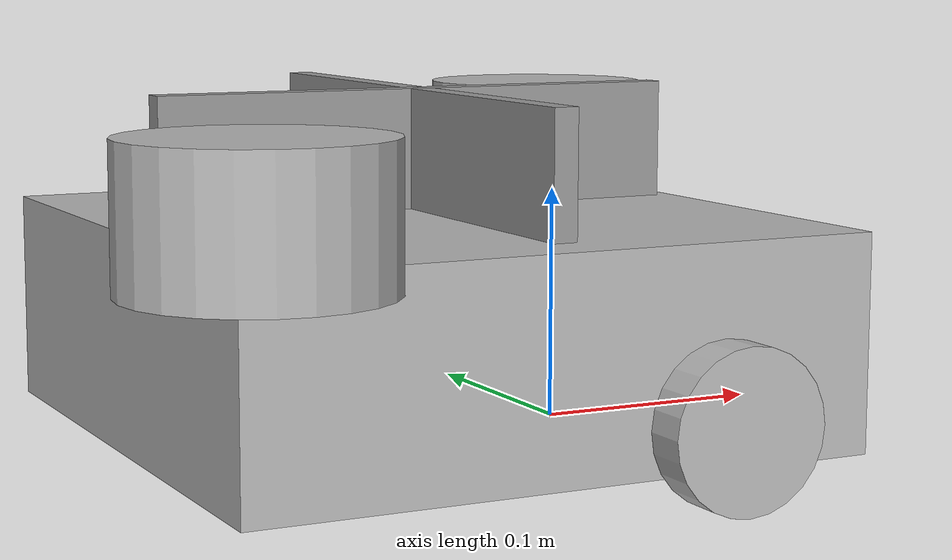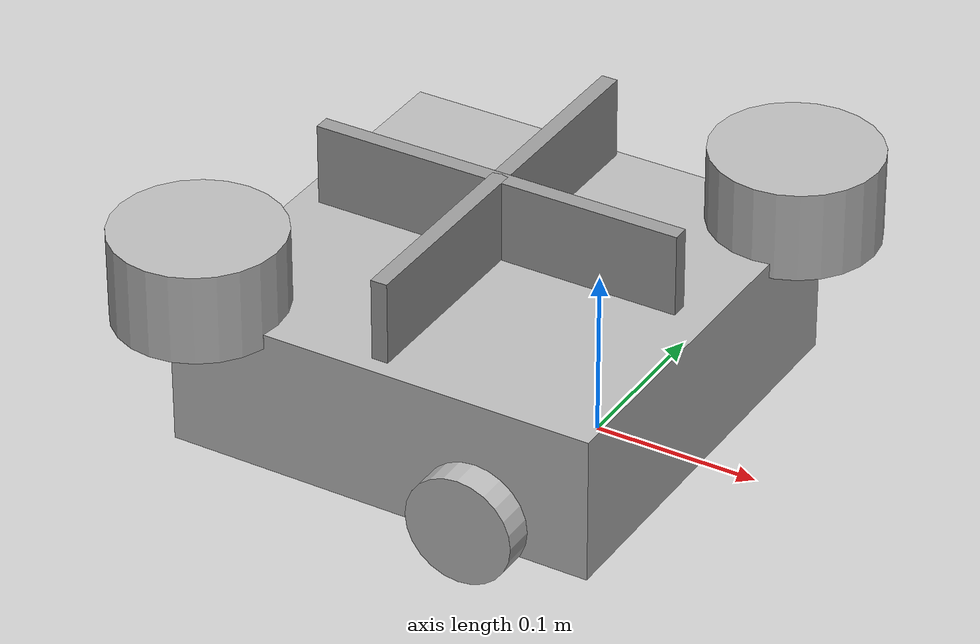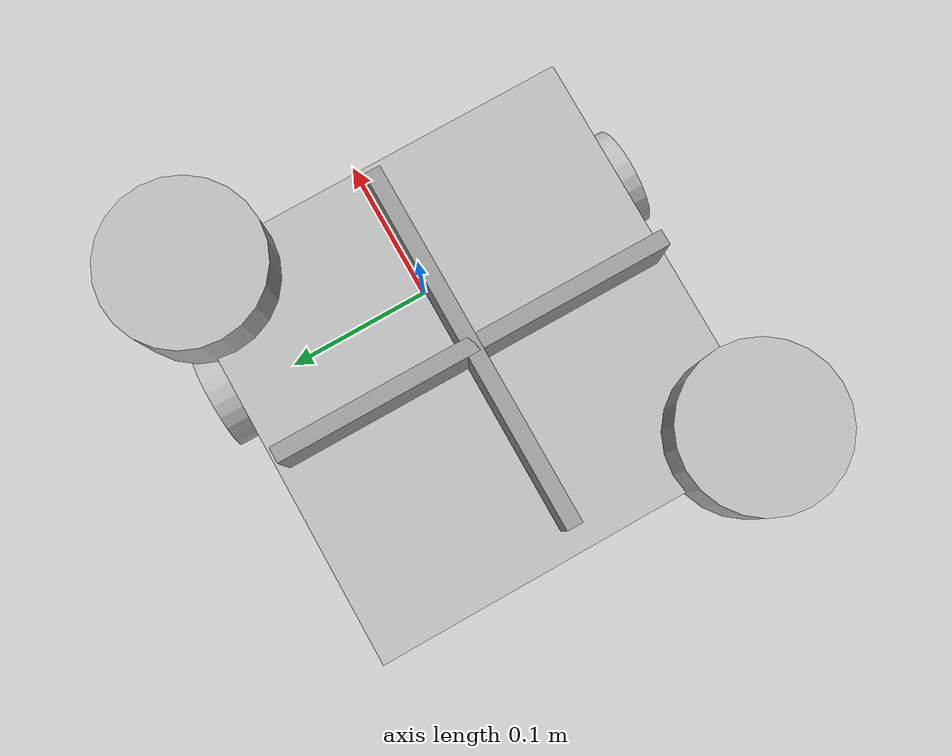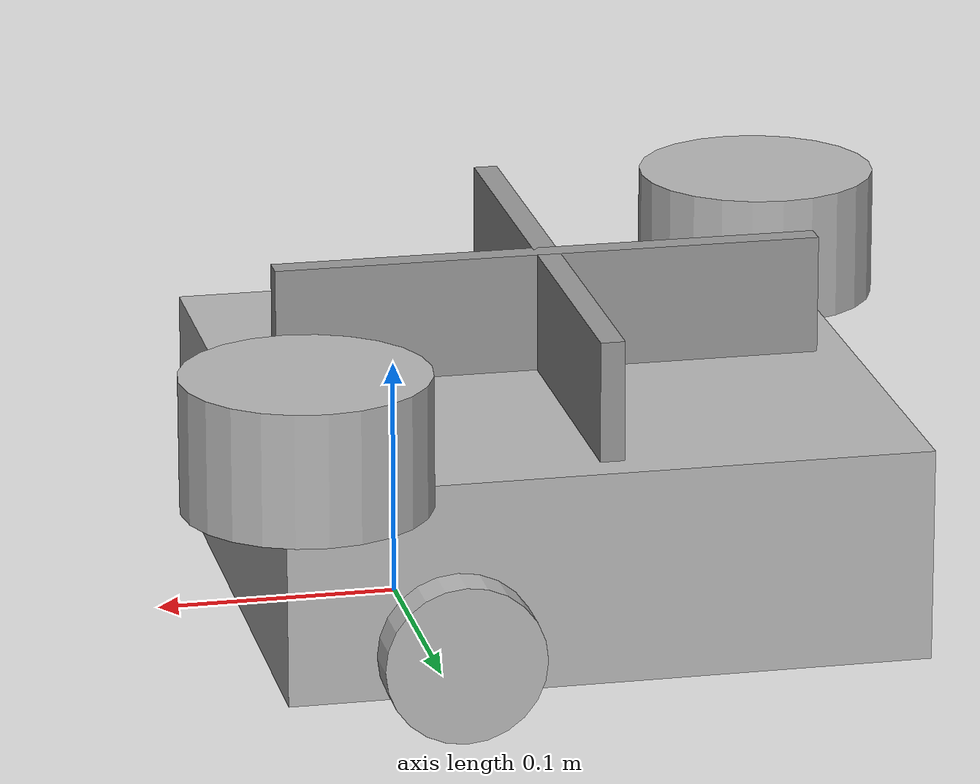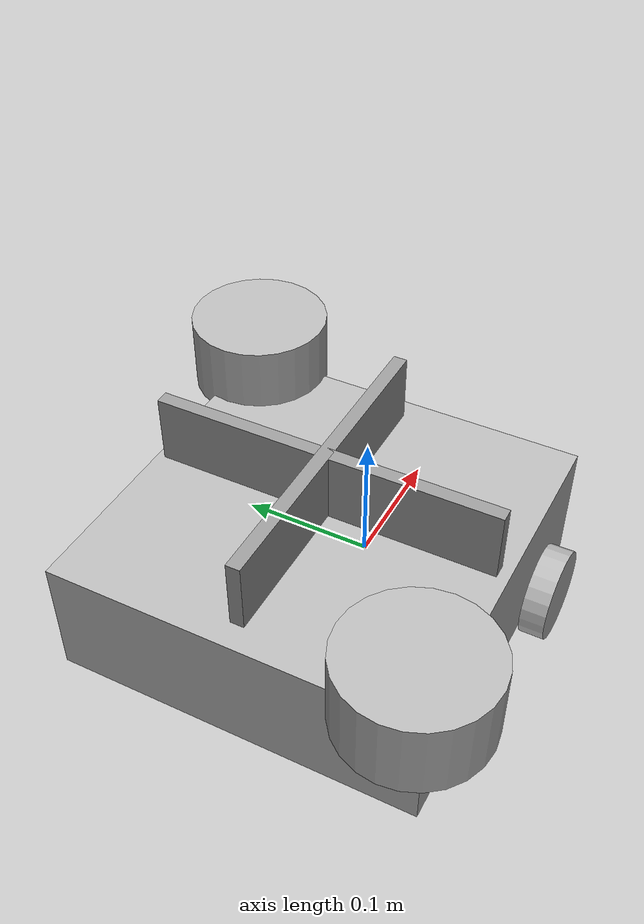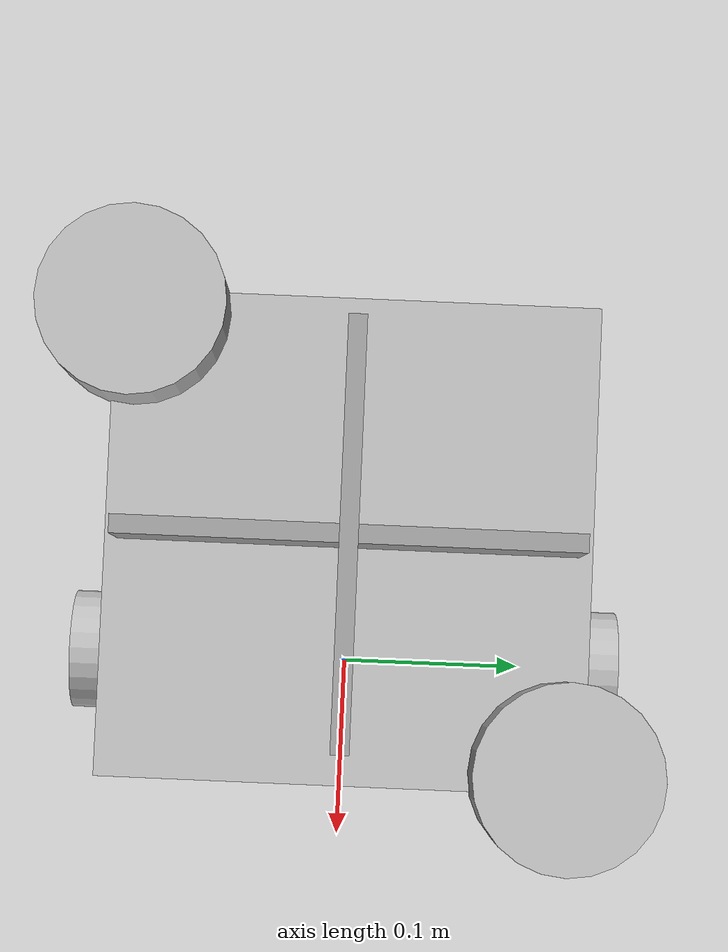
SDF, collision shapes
<?xml version='1.0'?>
<sdf version='1.7'>
  <model name='my_robot'>
    <link name='base_footprint'>
      <self_collide>0</self_collide>
      <inertial>
        <pose>0 0 0 0 -0 0</pose>
        <inertia>
          <ixx>1</ixx>
          <ixy>0</ixy>
          <ixz>0</ixz>
          <iyy>1</iyy>
          <iyz>0</iyz>
          <izz>1</izz>
        </inertia>
        <mass>1</mass>
      </inertial>
      <enable_wind>0</enable_wind>
      <kinematic>0</kinematic>
      <pose>0 0 0 0 -0 0</pose>
    </link>
    <link name='base_link'>
      <inertial>
        <pose>-0.064 0 0.048 0 -0 0</pose>
        <inertia>
          <ixx>0.0421114</ixx>
          <ixy>0</ixy>
          <ixz>0</ixz>
          <iyy>0.0421114</iyy>
          <iyz>0</iyz>
          <izz>0.0752549</izz>
        </inertia>
        <mass>1.37291</mass>
      </inertial>
      <self_collide>0</self_collide>
      <enable_wind>0</enable_wind>
      <kinematic>0</kinematic>
      <pose>0 0 0 0 -0 0</pose>
      <visual name='base_visual'>
        <pose>-0.064 0 0 0 -0 0</pose>
        <geometry>
          <mesh>
            <uri>model://my_robot/meshes/waffle_pi_base.dae</uri>
            <scale>0.001 0.001 0.001</scale>
          </mesh>
        </geometry>
        <material>
          <shader type='pixel'/>
          <emissive>0 0 0 1</emissive>
        </material>
        <transparency>0</transparency>
        <cast_shadows>1</cast_shadows>
      </visual>
      <collision name='base_collision'>
        <laser_retro>0</laser_retro>
        <max_contacts>10</max_contacts>
        <pose>-0.064 0 0.048 0 -0 0</pose>
        <geometry>
          <box>
            <size>0.265 0.265 0.089</size>
          </box>
        </geometry>
        <surface>
          <friction>
            <ode>
              <mu>1</mu>
              <mu2>1</mu2>
              <fdir1>0 0 0</fdir1>
              <slip1>0</slip1>
              <slip2>0</slip2>
            </ode>
            <torsional>
              <coefficient>1</coefficient>
              <patch_radius>0</patch_radius>
              <surface_radius>0</surface_radius>
              <use_patch_radius>1</use_patch_radius>
              <ode>
                <slip>0</slip>
              </ode>
            </torsional>
          </friction>
          <bounce>
            <restitution_coefficient>0</restitution_coefficient>
            <threshold>1e+06</threshold>
          </bounce>
          <contact>
            <collide_without_contact>0</collide_without_contact>
            <collide_without_contact_bitmask>1</collide_without_contact_bitmask>
            <collide_bitmask>1</collide_bitmask>
            <ode>
              <soft_cfm>0</soft_cfm>
              <soft_erp>0.2</soft_erp>
              <kp>1e+13</kp>
              <kd>1</kd>
              <max_vel>0.01</max_vel>
              <min_depth>0</min_depth>
            </ode>
            <bullet>
              <split_impulse>1</split_impulse>
              <split_impulse_penetration_threshold>-0.01</split_impulse_penetration_threshold>
              <soft_cfm>0</soft_cfm>
              <soft_erp>0.2</soft_erp>
              <kp>1e+13</kp>
              <kd>1</kd>
            </bullet>
          </contact>
        </surface>
      </collision>
    </link>
    <link name='base_scan_1'>
      <inertial>
        <pose>0.058 0.12 0.111 0 -0 0</pose>
        <inertia>
          <ixx>0.001</ixx>
          <ixy>0</ixy>
          <ixz>0</ixz>
          <iyy>0.001</iyy>
          <iyz>0</iyz>
          <izz>0.001</izz>
        </inertia>
        <mass>0.114</mass>
      </inertial>
      <sensor name='hls_lfcd_lds' type='ray'>
        <always_on>1</always_on>
        <visualize>1</visualize>
        <pose>0.046 0.12 0.121 0 -0 0</pose>
        <update_rate>5</update_rate>
        <ray>
          <scan>
            <horizontal>
              <samples>360</samples>
              <resolution>1</resolution>
              <min_angle>0</min_angle>
              <max_angle>6.28</max_angle>
            </horizontal>
            <vertical>
              <samples>1</samples>
              <min_angle>0</min_angle>
              <max_angle>0</max_angle>
            </vertical>
          </scan>
          <range>
            <min>0.10</min>
            <max>3.5</max>
            <resolution>0.015</resolution>
          </range>
          <noise>
            <type>gaussian</type>
            <mean>0</mean>
            <stddev>0.01</stddev>
          </noise>
        </ray>
        <plugin name='turtlebot3_laserscan' filename='libgazebo_ros_ray_sensor.so'>
          <ros>
            <remapping>~/out:=scan_1</remapping>
          </ros>
          <output_type>sensor_msgs/LaserScan</output_type>
          <frame_name>base_scan_1</frame_name>
        </plugin>
      </sensor>
      <self_collide>0</self_collide>
      <enable_wind>0</enable_wind>
      <kinematic>0</kinematic>
      <pose>0 0 0 0 -0 0</pose>
      <visual name='lidar_sensor_visual'>
        <pose>0.046 0.12 0.121 0 -0 0</pose>
        <geometry>
          <mesh>
            <uri>model://my_robot/meshes/lds.dae</uri>
            <scale>0.001 0.001 0.001</scale>
          </mesh>
        </geometry>
        <material>
          <shader type='pixel'/>
        </material>
        <transparency>0</transparency>
        <cast_shadows>1</cast_shadows>
      </visual>
      <collision name='lidar_sensor_collision'>
        <laser_retro>0</laser_retro>
        <max_contacts>10</max_contacts>
        <pose>0.058 0.12 0.111 0 -0 0</pose>
        <geometry>
          <cylinder>
            <radius>0.0508</radius>
            <length>0.055</length>
          </cylinder>
        </geometry>
        <surface>
          <friction>
            <ode>
              <mu>1</mu>
              <mu2>1</mu2>
              <fdir1>0 0 0</fdir1>
              <slip1>0</slip1>
              <slip2>0</slip2>
            </ode>
            <torsional>
              <coefficient>1</coefficient>
              <patch_radius>0</patch_radius>
              <surface_radius>0</surface_radius>
              <use_patch_radius>1</use_patch_radius>
              <ode>
                <slip>0</slip>
              </ode>
            </torsional>
          </friction>
          <bounce>
            <restitution_coefficient>0</restitution_coefficient>
            <threshold>1e+06</threshold>
          </bounce>
          <contact>
            <collide_without_contact>0</collide_without_contact>
            <collide_without_contact_bitmask>1</collide_without_contact_bitmask>
            <collide_bitmask>1</collide_bitmask>
            <ode>
              <soft_cfm>0</soft_cfm>
              <soft_erp>0.2</soft_erp>
              <kp>1e+13</kp>
              <kd>1</kd>
              <max_vel>0.01</max_vel>
              <min_depth>0</min_depth>
            </ode>
            <bullet>
              <split_impulse>1</split_impulse>
              <split_impulse_penetration_threshold>-0.01</split_impulse_penetration_threshold>
              <soft_cfm>0</soft_cfm>
              <soft_erp>0.2</soft_erp>
              <kp>1e+13</kp>
              <kd>1</kd>
            </bullet>
          </contact>
        </surface>
      </collision>
    </link>
    <link name='base_scan_2'>
      <inertial>
        <pose>-0.184 -0.12 0.111 0 -0 0</pose>
        <inertia>
          <ixx>0.001</ixx>
          <ixy>0</ixy>
          <ixz>0</ixz>
          <iyy>0.001</iyy>
          <iyz>0</iyz>
          <izz>0.001</izz>
        </inertia>
        <mass>0.114</mass>
      </inertial>
      <sensor name='hls_lfcd_lds' type='ray'>
        <always_on>1</always_on>
        <visualize>1</visualize>
        <pose>-0.196 -0.12 0.121 0 -0 0</pose>
        <update_rate>5</update_rate>
        <ray>
          <scan>
            <horizontal>
              <samples>360</samples>
              <resolution>1</resolution>
              <min_angle>0</min_angle>
              <max_angle>6.28</max_angle>
            </horizontal>
            <vertical>
              <samples>1</samples>
              <min_angle>0</min_angle>
              <max_angle>0</max_angle>
            </vertical>
          </scan>
          <range>
            <min>0.10</min>
            <max>3.5</max>
            <resolution>0.015</resolution>
          </range>
          <noise>
            <type>gaussian</type>
            <mean>0</mean>
            <stddev>0.01</stddev>
          </noise>
        </ray>
        <plugin name='turtlebot3_laserscan' filename='libgazebo_ros_ray_sensor.so'>
          <ros>
            <remapping>~/out:=scan_2</remapping>
          </ros>
          <output_type>sensor_msgs/LaserScan</output_type>
          <frame_name>base_scan_2</frame_name>
        </plugin>
      </sensor>
      <self_collide>0</self_collide>
      <enable_wind>0</enable_wind>
      <kinematic>0</kinematic>
      <pose>0 0 0 0 -0 0</pose>
      <visual name='lidar_sensor_visual'>
        <pose>-0.196 -0.12 0.121 0 -0 0</pose>
        <geometry>
          <mesh>
            <uri>model://my_robot/meshes/lds.dae</uri>
            <scale>0.001 0.001 0.001</scale>
          </mesh>
        </geometry>
        <material>
          <shader type='pixel'/>
        </material>
        <transparency>0</transparency>
        <cast_shadows>1</cast_shadows>
      </visual>
      <collision name='lidar_sensor_collision'>
        <laser_retro>0</laser_retro>
        <max_contacts>10</max_contacts>
        <pose>-0.184 -0.12 0.111 0 -0 0</pose>
        <geometry>
          <cylinder>
            <radius>0.0508</radius>
            <length>0.055</length>
          </cylinder>
        </geometry>
        <surface>
          <friction>
            <ode>
              <mu>1</mu>
              <mu2>1</mu2>
              <fdir1>0 0 0</fdir1>
              <slip1>0</slip1>
              <slip2>0</slip2>
            </ode>
            <torsional>
              <coefficient>1</coefficient>
              <patch_radius>0</patch_radius>
              <surface_radius>0</surface_radius>
              <use_patch_radius>1</use_patch_radius>
              <ode>
                <slip>0</slip>
              </ode>
            </torsional>
          </friction>
          <bounce>
            <restitution_coefficient>0</restitution_coefficient>
            <threshold>1e+06</threshold>
          </bounce>
          <contact>
            <collide_without_contact>0</collide_without_contact>
            <collide_without_contact_bitmask>1</collide_without_contact_bitmask>
            <collide_bitmask>1</collide_bitmask>
            <ode>
              <soft_cfm>0</soft_cfm>
              <soft_erp>0.2</soft_erp>
              <kp>1e+13</kp>
              <kd>1</kd>
              <max_vel>0.01</max_vel>
              <min_depth>0</min_depth>
            </ode>
            <bullet>
              <split_impulse>1</split_impulse>
              <split_impulse_penetration_threshold>-0.01</split_impulse_penetration_threshold>
              <soft_cfm>0</soft_cfm>
              <soft_erp>0.2</soft_erp>
              <kp>1e+13</kp>
              <kd>1</kd>
            </bullet>
          </contact>
        </surface>
      </collision>
    </link>
    <link name='camera_link'>
      <self_collide>0</self_collide>
      <inertial>
        <pose>0 0 0 0 -0 0</pose>
        <inertia>
          <ixx>1</ixx>
          <ixy>0</ixy>
          <ixz>0</ixz>
          <iyy>1</iyy>
          <iyz>0</iyz>
          <izz>1</izz>
        </inertia>
        <mass>1</mass>
      </inertial>
      <enable_wind>0</enable_wind>
      <kinematic>0</kinematic>
      <pose>0 0 0 0 -0 0</pose>
    </link>
    <link name='camera_rgb_optical_frame'>
      <inertial>
        <pose>0.076 0 0.093 0 -0 0</pose>
        <inertia>
          <ixx>0.001</ixx>
          <ixy>0</ixy>
          <ixz>0</ixz>
          <iyy>0.001</iyy>
          <iyz>0</iyz>
          <izz>0.001</izz>
        </inertia>
        <mass>0.035</mass>
      </inertial>
      <pose>0.076 0 0.093 0 -0 0</pose>
      <sensor name='camera' type='camera'>
        <always_on>1</always_on>
        <visualize>1</visualize>
        <update_rate>30</update_rate>
        <camera name='picam'>
          <horizontal_fov>1.0856</horizontal_fov>
          <image>
            <width>640</width>
            <height>480</height>
            <format>R8G8B8</format>
          </image>
          <clip>
            <near>0.03</near>
            <far>100</far>
          </clip>
          <noise>
            <type>gaussian</type>
            <mean>0</mean>
            <stddev>0.007</stddev>
          </noise>
        </camera>
        <plugin name='camera_driver' filename='libgazebo_ros_camera.so'>
          <ros/>
        </plugin>
      </sensor>
      <self_collide>0</self_collide>
      <enable_wind>0</enable_wind>
      <kinematic>0</kinematic>
    </link>
    <link name='caster_back_left_link'>
      <pose>-0.177 0.064 -0.004 -1.57 -0 -0</pose>
      <inertial>
        <mass>0.001</mass>
        <inertia>
          <ixx>1e-05</ixx>
          <ixy>0</ixy>
          <ixz>0</ixz>
          <iyy>1e-05</iyy>
          <iyz>0</iyz>
          <izz>1e-05</izz>
        </inertia>
        <pose>0 0 0 0 -0 0</pose>
      </inertial>
      <self_collide>0</self_collide>
      <enable_wind>0</enable_wind>
      <kinematic>0</kinematic>
      <collision name='collision'>
        <laser_retro>0</laser_retro>
        <max_contacts>10</max_contacts>
        <pose>0 0 0 0 -0 0</pose>
        <geometry>
          <sphere>
            <radius>0.005</radius>
          </sphere>
        </geometry>
        <surface>
          <friction>
            <ode>
              <mu>1</mu>
              <mu2>1</mu2>
              <fdir1>0 0 0</fdir1>
              <slip1>0</slip1>
              <slip2>0</slip2>
            </ode>
            <torsional>
              <coefficient>1</coefficient>
              <patch_radius>0</patch_radius>
              <surface_radius>0</surface_radius>
              <use_patch_radius>1</use_patch_radius>
              <ode>
                <slip>0</slip>
              </ode>
            </torsional>
          </friction>
          <bounce>
            <restitution_coefficient>0</restitution_coefficient>
            <threshold>1e+06</threshold>
          </bounce>
          <contact>
            <collide_without_contact>0</collide_without_contact>
            <collide_without_contact_bitmask>1</collide_without_contact_bitmask>
            <collide_bitmask>1</collide_bitmask>
            <ode>
              <soft_cfm>0</soft_cfm>
              <soft_erp>0.2</soft_erp>
              <kp>100000</kp>
              <kd>1</kd>
              <max_vel>0.01</max_vel>
              <min_depth>0.001</min_depth>
            </ode>
            <bullet>
              <split_impulse>1</split_impulse>
              <split_impulse_penetration_threshold>-0.01</split_impulse_penetration_threshold>
              <soft_cfm>0</soft_cfm>
              <soft_erp>0.2</soft_erp>
              <kp>100000</kp>
              <kd>1</kd>
            </bullet>
          </contact>
        </surface>
      </collision>
    </link>
    <link name='caster_back_right_link'>
      <pose>-0.177 -0.064 -0.004 -1.57 -0 -0</pose>
      <inertial>
        <mass>0.001</mass>
        <inertia>
          <ixx>1e-05</ixx>
          <ixy>0</ixy>
          <ixz>0</ixz>
          <iyy>1e-05</iyy>
          <iyz>0</iyz>
          <izz>1e-05</izz>
        </inertia>
        <pose>0 0 0 0 -0 0</pose>
      </inertial>
      <self_collide>0</self_collide>
      <enable_wind>0</enable_wind>
      <kinematic>0</kinematic>
      <collision name='collision'>
        <laser_retro>0</laser_retro>
        <max_contacts>10</max_contacts>
        <pose>0 0 0 0 -0 0</pose>
        <geometry>
          <sphere>
            <radius>0.005</radius>
          </sphere>
        </geometry>
        <surface>
          <friction>
            <ode>
              <mu>1</mu>
              <mu2>1</mu2>
              <fdir1>0 0 0</fdir1>
              <slip1>0</slip1>
              <slip2>0</slip2>
            </ode>
            <torsional>
              <coefficient>1</coefficient>
              <patch_radius>0</patch_radius>
              <surface_radius>0</surface_radius>
              <use_patch_radius>1</use_patch_radius>
              <ode>
                <slip>0</slip>
              </ode>
            </torsional>
          </friction>
          <bounce>
            <restitution_coefficient>0</restitution_coefficient>
            <threshold>1e+06</threshold>
          </bounce>
          <contact>
            <collide_without_contact>0</collide_without_contact>
            <collide_without_contact_bitmask>1</collide_without_contact_bitmask>
            <collide_bitmask>1</collide_bitmask>
            <ode>
              <soft_cfm>0</soft_cfm>
              <soft_erp>0.2</soft_erp>
              <kp>100000</kp>
              <kd>1</kd>
              <max_vel>0.01</max_vel>
              <min_depth>0.001</min_depth>
            </ode>
            <bullet>
              <split_impulse>1</split_impulse>
              <split_impulse_penetration_threshold>-0.01</split_impulse_penetration_threshold>
              <soft_cfm>0</soft_cfm>
              <soft_erp>0.2</soft_erp>
              <kp>100000</kp>
              <kd>1</kd>
            </bullet>
          </contact>
        </surface>
      </collision>
    </link>
    <link name='imu_link'>
      <sensor name='tb3_imu' type='imu'>
        <always_on>1</always_on>
        <update_rate>200</update_rate>
        <imu>
          <angular_velocity>
            <x>
              <noise type='gaussian'>
                <mean>0</mean>
                <stddev>0.0002</stddev>
              </noise>
            </x>
            <y>
              <noise type='gaussian'>
                <mean>0</mean>
                <stddev>0.0002</stddev>
              </noise>
            </y>
            <z>
              <noise type='gaussian'>
                <mean>0</mean>
                <stddev>0.0002</stddev>
              </noise>
            </z>
          </angular_velocity>
          <linear_acceleration>
            <x>
              <noise type='gaussian'>
                <mean>0</mean>
                <stddev>0.017</stddev>
              </noise>
            </x>
            <y>
              <noise type='gaussian'>
                <mean>0</mean>
                <stddev>0.017</stddev>
              </noise>
            </y>
            <z>
              <noise type='gaussian'>
                <mean>0</mean>
                <stddev>0.017</stddev>
              </noise>
            </z>
          </linear_acceleration>
          <angular_velocity/>
          <linear_acceleration/>
        </imu>
        <plugin name='turtlebot3_imu' filename='libgazebo_ros_imu_sensor.so'>
          <ros>
            <remapping>~/out:=imu</remapping>
          </ros>
        </plugin>
      </sensor>
      <self_collide>0</self_collide>
      <inertial>
        <pose>0 0 0 0 -0 0</pose>
        <inertia>
          <ixx>1</ixx>
          <ixy>0</ixy>
          <ixz>0</ixz>
          <iyy>1</iyy>
          <iyz>0</iyz>
          <izz>1</izz>
        </inertia>
        <mass>1</mass>
      </inertial>
      <enable_wind>0</enable_wind>
      <kinematic>0</kinematic>
      <pose>0 0 0 0 -0 0</pose>
    </link>
    <link name='link_1'>
      <inertial>
        <mass>1</mass>
        <inertia>
          <ixx>0.166667</ixx>
          <ixy>0</ixy>
          <ixz>0</ixz>
          <iyy>0.166667</iyy>
          <iyz>0</iyz>
          <izz>0.166667</izz>
        </inertia>
        <pose>0 0 0 0 -0 0</pose>
      </inertial>
      <pose>-0.065 -0 0.12 0 -0 1.5708</pose>
      <gravity>1</gravity>
      <self_collide>0</self_collide>
      <kinematic>0</kinematic>
      <enable_wind>0</enable_wind>
      <visual name='visual'>
        <pose>0 0 0 0 -0 0</pose>
        <geometry>
          <box>
            <size>0.25 0.01 0.05</size>
          </box>
        </geometry>
        <material>
          <lighting>1</lighting>
          <script>
            <uri>file://media/materials/scripts/gazebo.material</uri>
            <name>Gazebo/Grey</name>
          </script>
          <shader type='pixel'>
            <normal_map>__default__</normal_map>
          </shader>
          <ambient>0.3 0.3 0.3 1</ambient>
          <diffuse>0.7 0.7 0.7 1</diffuse>
          <specular>0.01 0.01 0.01 1</specular>
          <emissive>0 0 0 1</emissive>
        </material>
        <transparency>0</transparency>
        <cast_shadows>1</cast_shadows>
      </visual>
      <collision name='collision'>
        <laser_retro>0</laser_retro>
        <max_contacts>10</max_contacts>
        <pose>0 0 0 0 -0 0</pose>
        <geometry>
          <box>
            <size>0.25 0.01 0.05</size>
          </box>
        </geometry>
        <surface>
          <friction>
            <ode>
              <mu>1</mu>
              <mu2>1</mu2>
              <fdir1>0 0 0</fdir1>
              <slip1>0</slip1>
              <slip2>0</slip2>
            </ode>
            <torsional>
              <coefficient>1</coefficient>
              <patch_radius>0</patch_radius>
              <surface_radius>0</surface_radius>
              <use_patch_radius>1</use_patch_radius>
              <ode>
                <slip>0</slip>
              </ode>
            </torsional>
          </friction>
          <bounce>
            <restitution_coefficient>0</restitution_coefficient>
            <threshold>1e+06</threshold>
          </bounce>
          <contact>
            <collide_without_contact>0</collide_without_contact>
            <collide_without_contact_bitmask>1</collide_without_contact_bitmask>
            <collide_bitmask>1</collide_bitmask>
            <ode>
              <soft_cfm>0</soft_cfm>
              <soft_erp>0.2</soft_erp>
              <kp>1e+13</kp>
              <kd>1</kd>
              <max_vel>0.01</max_vel>
              <min_depth>0</min_depth>
            </ode>
            <bullet>
              <split_impulse>1</split_impulse>
              <split_impulse_penetration_threshold>-0.01</split_impulse_penetration_threshold>
              <soft_cfm>0</soft_cfm>
              <soft_erp>0.2</soft_erp>
              <kp>1e+13</kp>
              <kd>1</kd>
            </bullet>
          </contact>
        </surface>
      </collision>
    </link>
    <link name='link_2'>
      <inertial>
        <mass>1</mass>
        <inertia>
          <ixx>0.166667</ixx>
          <ixy>0</ixy>
          <ixz>0</ixz>
          <iyy>0.166667</iyy>
          <iyz>0</iyz>
          <izz>0.166667</izz>
        </inertia>
        <pose>0 0 0 0 -0 0</pose>
      </inertial>
      <pose>-0.065 -0 0.12 0 -0 0</pose>
      <gravity>1</gravity>
      <self_collide>0</self_collide>
      <kinematic>0</kinematic>
      <enable_wind>0</enable_wind>
      <visual name='visual'>
        <pose>0 0 0 0 -0 0</pose>
        <geometry>
          <box>
            <size>0.23 0.01 0.05</size>
          </box>
        </geometry>
        <material>
          <lighting>1</lighting>
          <script>
            <uri>file://media/materials/scripts/gazebo.material</uri>
            <name>Gazebo/Grey</name>
          </script>
          <shader type='pixel'>
            <normal_map>__default__</normal_map>
          </shader>
          <ambient>0.3 0.3 0.3 1</ambient>
          <diffuse>0.7 0.7 0.7 1</diffuse>
          <specular>0.01 0.01 0.01 1</specular>
          <emissive>0 0 0 1</emissive>
        </material>
        <transparency>0</transparency>
        <cast_shadows>1</cast_shadows>
      </visual>
      <collision name='collision'>
        <laser_retro>0</laser_retro>
        <max_contacts>10</max_contacts>
        <pose>0 0 0 0 -0 0</pose>
        <geometry>
          <box>
            <size>0.23 0.01 0.05</size>
          </box>
        </geometry>
        <surface>
          <friction>
            <ode>
              <mu>1</mu>
              <mu2>1</mu2>
              <fdir1>0 0 0</fdir1>
              <slip1>0</slip1>
              <slip2>0</slip2>
            </ode>
            <torsional>
              <coefficient>1</coefficient>
              <patch_radius>0</patch_radius>
              <surface_radius>0</surface_radius>
              <use_patch_radius>1</use_patch_radius>
              <ode>
                <slip>0</slip>
              </ode>
            </torsional>
          </friction>
          <bounce>
            <restitution_coefficient>0</restitution_coefficient>
            <threshold>1e+06</threshold>
          </bounce>
          <contact>
            <collide_without_contact>0</collide_without_contact>
            <collide_without_contact_bitmask>1</collide_without_contact_bitmask>
            <collide_bitmask>1</collide_bitmask>
            <ode>
              <soft_cfm>0</soft_cfm>
              <soft_erp>0.2</soft_erp>
              <kp>1e+13</kp>
              <kd>1</kd>
              <max_vel>0.01</max_vel>
              <min_depth>0</min_depth>
            </ode>
            <bullet>
              <split_impulse>1</split_impulse>
              <split_impulse_penetration_threshold>-0.01</split_impulse_penetration_threshold>
              <soft_cfm>0</soft_cfm>
              <soft_erp>0.2</soft_erp>
              <kp>1e+13</kp>
              <kd>1</kd>
            </bullet>
          </contact>
        </surface>
      </collision>
    </link>
    <link name='wheel_left_link'>
      <inertial>
        <pose>0 0.144 0.023 -1.57 0 0</pose>
        <inertia>
          <ixx>0.00181582</ixx>
          <ixy>-9.3392e-12</ixy>
          <ixz>1.04909e-11</ixz>
          <iyy>0.00329221</iyy>
          <iyz>5.75694e-11</iyz>
          <izz>0.00181582</izz>
        </inertia>
        <mass>0.0284989</mass>
      </inertial>
      <self_collide>0</self_collide>
      <enable_wind>0</enable_wind>
      <kinematic>0</kinematic>
      <pose>0 0 0 0 -0 0</pose>
      <visual name='wheel_left_visual'>
        <pose>0 0.144 0.023 0 -0 0</pose>
        <geometry>
          <mesh>
            <uri>model://my_robot/meshes/tire.dae</uri>
            <scale>0.001 0.001 0.001</scale>
          </mesh>
        </geometry>
        <material>
          <shader type='pixel'/>
        </material>
        <transparency>0</transparency>
        <cast_shadows>1</cast_shadows>
      </visual>
      <collision name='wheel_left_collision'>
        <laser_retro>0</laser_retro>
        <max_contacts>10</max_contacts>
        <pose>0 0.144 0.023 -1.57 0 0</pose>
        <geometry>
          <cylinder>
            <radius>0.033</radius>
            <length>0.018</length>
          </cylinder>
        </geometry>
        <surface>
          <friction>
            <ode>
              <mu>100000</mu>
              <mu2>100000</mu2>
              <fdir1>0 0 0</fdir1>
              <slip1>0</slip1>
              <slip2>0</slip2>
            </ode>
            <torsional>
              <coefficient>1</coefficient>
              <patch_radius>0</patch_radius>
              <surface_radius>0</surface_radius>
              <use_patch_radius>1</use_patch_radius>
              <ode>
                <slip>0</slip>
              </ode>
            </torsional>
          </friction>
          <bounce>
            <restitution_coefficient>0</restitution_coefficient>
            <threshold>1e+06</threshold>
          </bounce>
          <contact>
            <collide_without_contact>0</collide_without_contact>
            <collide_without_contact_bitmask>1</collide_without_contact_bitmask>
            <collide_bitmask>1</collide_bitmask>
            <ode>
              <soft_cfm>0</soft_cfm>
              <soft_erp>0.2</soft_erp>
              <kp>100000</kp>
              <kd>1</kd>
              <max_vel>0.01</max_vel>
              <min_depth>0.001</min_depth>
            </ode>
            <bullet>
              <split_impulse>1</split_impulse>
              <split_impulse_penetration_threshold>-0.01</split_impulse_penetration_threshold>
              <soft_cfm>0</soft_cfm>
              <soft_erp>0.2</soft_erp>
              <kp>100000</kp>
              <kd>1</kd>
            </bullet>
          </contact>
        </surface>
      </collision>
    </link>
    <link name='wheel_right_link'>
      <inertial>
        <pose>0 -0.144 0.023 -1.57 0 0</pose>
        <inertia>
          <ixx>0.00181582</ixx>
          <ixy>-9.3392e-12</ixy>
          <ixz>1.04909e-11</ixz>
          <iyy>0.00329221</iyy>
          <iyz>5.75694e-11</iyz>
          <izz>0.00181582</izz>
        </inertia>
        <mass>0.0284989</mass>
      </inertial>
      <self_collide>0</self_collide>
      <enable_wind>0</enable_wind>
      <kinematic>0</kinematic>
      <pose>0 0 0 0 -0 0</pose>
      <visual name='wheel_right_visual'>
        <pose>0 -0.144 0.023 0 -0 0</pose>
        <geometry>
          <mesh>
            <uri>model://my_robot/meshes/tire.dae</uri>
            <scale>0.001 0.001 0.001</scale>
          </mesh>
        </geometry>
        <material>
          <shader type='pixel'/>
        </material>
        <transparency>0</transparency>
        <cast_shadows>1</cast_shadows>
      </visual>
      <collision name='wheel_right_collision'>
        <laser_retro>0</laser_retro>
        <max_contacts>10</max_contacts>
        <pose>0 -0.144 0.023 -1.57 0 0</pose>
        <geometry>
          <cylinder>
            <radius>0.033</radius>
            <length>0.018</length>
          </cylinder>
        </geometry>
        <surface>
          <friction>
            <ode>
              <mu>100000</mu>
              <mu2>100000</mu2>
              <fdir1>0 0 0</fdir1>
              <slip1>0</slip1>
              <slip2>0</slip2>
            </ode>
            <torsional>
              <coefficient>1</coefficient>
              <patch_radius>0</patch_radius>
              <surface_radius>0</surface_radius>
              <use_patch_radius>1</use_patch_radius>
              <ode>
                <slip>0</slip>
              </ode>
            </torsional>
          </friction>
          <bounce>
            <restitution_coefficient>0</restitution_coefficient>
            <threshold>1e+06</threshold>
          </bounce>
          <contact>
            <collide_without_contact>0</collide_without_contact>
            <collide_without_contact_bitmask>1</collide_without_contact_bitmask>
            <collide_bitmask>1</collide_bitmask>
            <ode>
              <soft_cfm>0</soft_cfm>
              <soft_erp>0.2</soft_erp>
              <kp>100000</kp>
              <kd>1</kd>
              <max_vel>0.01</max_vel>
              <min_depth>0.001</min_depth>
            </ode>
            <bullet>
              <split_impulse>1</split_impulse>
              <split_impulse_penetration_threshold>-0.01</split_impulse_penetration_threshold>
              <soft_cfm>0</soft_cfm>
              <soft_erp>0.2</soft_erp>
              <kp>100000</kp>
              <kd>1</kd>
            </bullet>
          </contact>
        </surface>
      </collision>
    </link>
    <joint name='base_joint' type='fixed'>
      <parent>base_footprint</parent>
      <child>base_link</child>
      <pose>0 0 0.01 0 -0 0</pose>
      <physics>
        <ode>
          <limit>
            <cfm>0</cfm>
            <erp>0.2</erp>
          </limit>
          <suspension>
            <cfm>0</cfm>
            <erp>0.2</erp>
          </suspension>
        </ode>
      </physics>
    </joint>
    <joint name='link_1_joint' type='fixed'>
      <parent>base_link</parent>
      <child>link_1</child>
      <pose>0 0 0 0 -0 0</pose>
      <physics>
        <ode>
          <limit>
            <cfm>0</cfm>
            <erp>0.2</erp>
          </limit>
          <suspension>
            <cfm>0</cfm>
            <erp>0.2</erp>
          </suspension>
        </ode>
      </physics>
    </joint>
    <joint name='link_2_joint' type='fixed'>
      <parent>base_link</parent>
      <child>link_2</child>
      <pose>0 0 0 0 -0 0</pose>
      <physics>
        <ode>
          <limit>
            <cfm>0</cfm>
            <erp>0.2</erp>
          </limit>
          <suspension>
            <cfm>0</cfm>
            <erp>0.2</erp>
          </suspension>
        </ode>
      </physics>
    </joint>
    <joint name='camera_joint' type='fixed'>
      <parent>base_link</parent>
      <child>camera_link</child>
      <pose>0.073 -0.011 0.084 0 -0 0</pose>
      <physics>
        <ode>
          <limit>
            <cfm>0</cfm>
            <erp>0.2</erp>
          </limit>
          <suspension>
            <cfm>0</cfm>
            <erp>0.2</erp>
          </suspension>
        </ode>
      </physics>
    </joint>
    <joint name='camera_rgb_joint' type='fixed'>
      <parent>camera_link</parent>
      <child>camera_rgb_optical_frame</child>
      <pose>0.003 0.011 0.009 0 -0 0</pose>
      <physics>
        <ode>
          <limit>
            <cfm>0</cfm>
            <erp>0.2</erp>
          </limit>
          <suspension>
            <cfm>0</cfm>
            <erp>0.2</erp>
          </suspension>
        </ode>
      </physics>
    </joint>
    <joint name='caster_back_left_joint' type='ball'>
      <parent>base_link</parent>
      <child>caster_back_left_link</child>
      <pose>0 0 0 0 -0 0</pose>
      <physics>
        <ode>
          <limit>
            <cfm>0</cfm>
            <erp>0.2</erp>
          </limit>
          <suspension>
            <cfm>0</cfm>
            <erp>0.2</erp>
          </suspension>
        </ode>
      </physics>
    </joint>
    <joint name='caster_back_right_joint' type='ball'>
      <parent>base_link</parent>
      <child>caster_back_right_link</child>
      <pose>0 0 0 0 -0 0</pose>
      <physics>
        <ode>
          <limit>
            <cfm>0</cfm>
            <erp>0.2</erp>
          </limit>
          <suspension>
            <cfm>0</cfm>
            <erp>0.2</erp>
          </suspension>
        </ode>
      </physics>
    </joint>
    <joint name='imu_joint' type='fixed'>
      <parent>base_link</parent>
      <child>imu_link</child>
      <pose>-0.032 0 0.068 0 -0 0</pose>
      <physics>
        <ode>
          <limit>
            <cfm>0</cfm>
            <erp>0.2</erp>
          </limit>
          <suspension>
            <cfm>0</cfm>
            <erp>0.2</erp>
          </suspension>
        </ode>
      </physics>
    </joint>
    <joint name='lidar_joint_1' type='fixed'>
      <parent>base_link</parent>
      <child>base_scan_1</child>
      <pose>0.046 0.12 0.121 0 -0 0</pose>
      <physics>
        <ode>
          <limit>
            <cfm>0</cfm>
            <erp>0.2</erp>
          </limit>
          <suspension>
            <cfm>0</cfm>
            <erp>0.2</erp>
          </suspension>
        </ode>
      </physics>
    </joint>
    <joint name='lidar_joint_2' type='fixed'>
      <parent>base_link</parent>
      <child>base_scan_2</child>
      <pose>-0.196 -0.12 0.121 0 -0 0</pose>
      <physics>
        <ode>
          <limit>
            <cfm>0</cfm>
            <erp>0.2</erp>
          </limit>
          <suspension>
            <cfm>0</cfm>
            <erp>0.2</erp>
          </suspension>
        </ode>
      </physics>
    </joint>
    <joint name='wheel_left_joint' type='revolute'>
      <parent>base_link</parent>
      <child>wheel_left_link</child>
      <pose>0 0.144 0.023 -1.57 0 0</pose>
      <axis>
        <xyz>0 0 1</xyz>
        <limit>
          <lower>-1e+16</lower>
          <upper>1e+16</upper>
          <effort>-1</effort>
          <velocity>-1</velocity>
        </limit>
        <dynamics>
          <spring_reference>0</spring_reference>
          <spring_stiffness>0</spring_stiffness>
          <damping>0</damping>
          <friction>0</friction>
        </dynamics>
      </axis>
      <physics>
        <ode>
          <limit>
            <cfm>0</cfm>
            <erp>0.2</erp>
          </limit>
          <suspension>
            <cfm>0</cfm>
            <erp>0.2</erp>
          </suspension>
        </ode>
      </physics>
    </joint>
    <joint name='wheel_right_joint' type='revolute'>
      <parent>base_link</parent>
      <child>wheel_right_link</child>
      <pose>0 -0.144 0.023 -1.57 0 0</pose>
      <axis>
        <xyz>0 0 1</xyz>
        <limit>
          <lower>-1e+16</lower>
          <upper>1e+16</upper>
          <effort>-1</effort>
          <velocity>-1</velocity>
        </limit>
        <dynamics>
          <spring_reference>0</spring_reference>
          <spring_stiffness>0</spring_stiffness>
          <damping>0</damping>
          <friction>0</friction>
        </dynamics>
      </axis>
      <physics>
        <ode>
          <limit>
            <cfm>0</cfm>
            <erp>0.2</erp>
          </limit>
          <suspension>
            <cfm>0</cfm>
            <erp>0.2</erp>
          </suspension>
        </ode>
      </physics>
    </joint>
    <static>0</static>
    <allow_auto_disable>0</allow_auto_disable>
    <plugin name='turtlebot3_diff_drive' filename='libgazebo_ros_diff_drive.so'>
      <ros/>
      <update_rate>30</update_rate>
      <left_joint>wheel_left_joint</left_joint>
      <right_joint>wheel_right_joint</right_joint>
      <wheel_separation>0.287</wheel_separation>
      <wheel_diameter>0.066</wheel_diameter>
      <max_wheel_torque>20</max_wheel_torque>
      <max_wheel_acceleration>1.0</max_wheel_acceleration>
      <command_topic>cmd_vel</command_topic>
      <publish_odom>1</publish_odom>
      <publish_odom_tf>1</publish_odom_tf>
      <publish_wheel_tf>0</publish_wheel_tf>
      <odometry_topic>odom</odometry_topic>
      <odometry_frame>odom</odometry_frame>
      <robot_base_frame>base_footprint</robot_base_frame>
    </plugin>
    <plugin name='turtlebot3_joint_state' filename='libgazebo_ros_joint_state_publisher.so'>
      <ros>
        <remapping>~/out:=joint_states</remapping>
      </ros>
      <update_rate>30</update_rate>
      <joint_name>wheel_left_joint</joint_name>
      <joint_name>wheel_right_joint</joint_name>
      <joint_name>lidar_joint_1</joint_name>
      <joint_name>lidar_joint_2</joint_name>
      <joint_name>base_joint</joint_name>
    </plugin>
  </model>
</sdf>
